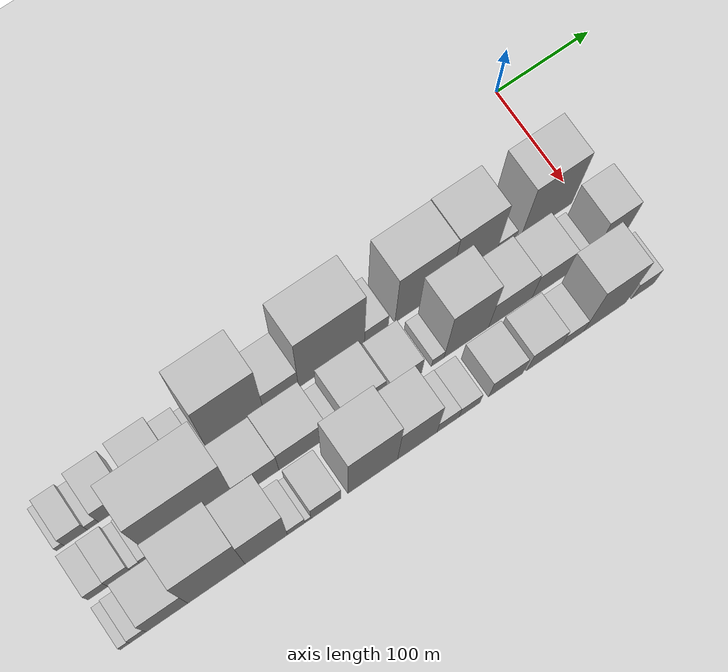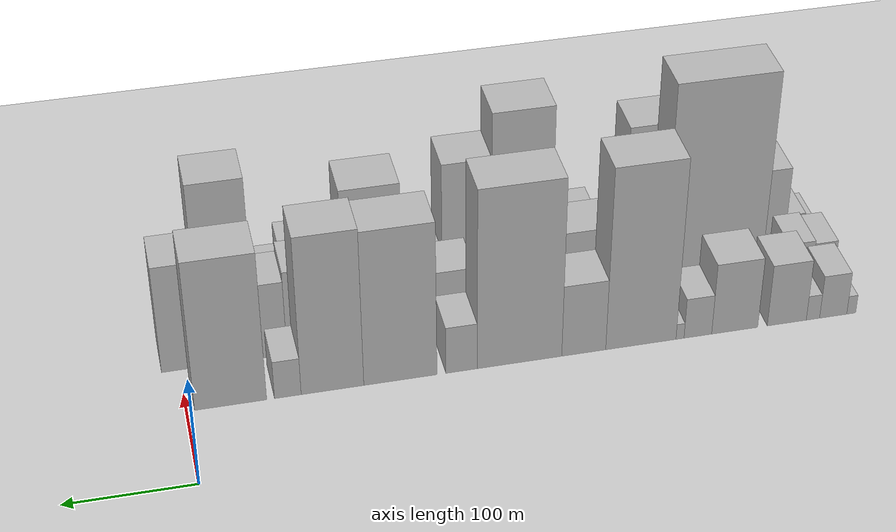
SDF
<sdf version="1.6">
 <world name="default">
  <include><name>ground_plane_1</name><uri>model://HANNAS_ground_plane</uri></include>
  <model name="building_1">
   <static>1</static>
   <pose>100.0000 -532.1938 0 0.000000 0.000000 0.000000</pose>
   <link name="link">
    <pose>0 0 9.00 0 0 0</pose>
    <collision name="collision"><geometry><box><size>40.0000 7.6124 18.0000</size></box></geometry></collision>
    <visual name="visual">
     <cast_shadows>0</cast_shadows>
     <geometry><box><size>40.0000 7.6124 18.0000</size></box></geometry>
     <material>
      <script>
       <uri>model://HANNAS_wall/materials/scripts</uri>
       <uri>model://HANNAS_wall/materials/textures</uri>
       <name>vrc/HANNAS_wall</name>
      </script>
     </material>
    </visual>
   </link>
  </model>
  <model name="building_2">
   <static>1</static>
   <pose>100.0000 -516.9038 0 0.000000 0.000000 0.000000</pose>
   <link name="link">
    <pose>0 0 21.00 0 0 0</pose>
    <collision name="collision"><geometry><box><size>40.0000 22.9676 42.0000</size></box></geometry></collision>
    <visual name="visual">
     <cast_shadows>0</cast_shadows>
     <geometry><box><size>40.0000 22.9676 42.0000</size></box></geometry>
     <material>
      <script>
       <uri>model://HANNAS_wall/materials/scripts</uri>
       <uri>model://HANNAS_wall/materials/textures</uri>
       <name>vrc/HANNAS_wall</name>
      </script>
     </material>
    </visual>
   </link>
  </model>
  <model name="building_3">
   <static>1</static>
   <pose>100.0000 -499.8165 0 0.000000 0.000000 0.000000</pose>
   <link name="link">
    <pose>0 0 12.00 0 0 0</pose>
    <collision name="collision"><geometry><box><size>40.0000 11.2069 24.0000</size></box></geometry></collision>
    <visual name="visual">
     <cast_shadows>0</cast_shadows>
     <geometry><box><size>40.0000 11.2069 24.0000</size></box></geometry>
     <material>
      <script>
       <uri>model://HANNAS_wall/materials/scripts</uri>
       <uri>model://HANNAS_wall/materials/textures</uri>
       <name>vrc/HANNAS_wall</name>
      </script>
     </material>
    </visual>
   </link>
  </model>
  <model name="building_4">
   <static>1</static>
   <pose>100.0000 -477.8729 0 0.000000 0.000000 0.000000</pose>
   <link name="link">
    <pose>0 0 30.00 0 0 0</pose>
    <collision name="collision"><geometry><box><size>40.0000 32.6803 60.0000</size></box></geometry></collision>
    <visual name="visual">
     <cast_shadows>0</cast_shadows>
     <geometry><box><size>40.0000 32.6803 60.0000</size></box></geometry>
     <material>
      <script>
       <uri>model://HANNAS_wall/materials/scripts</uri>
       <uri>model://HANNAS_wall/materials/textures</uri>
       <name>vrc/HANNAS_wall</name>
      </script>
     </material>
    </visual>
   </link>
  </model>
  <model name="building_5">
   <static>1</static>
   <pose>100.0000 -434.3912 0 0.000000 0.000000 0.000000</pose>
   <link name="link">
    <pose>0 0 34.50 0 0 0</pose>
    <collision name="collision"><geometry><box><size>40.0000 38.2831 69.0000</size></box></geometry></collision>
    <visual name="visual">
     <cast_shadows>0</cast_shadows>
     <geometry><box><size>40.0000 38.2831 69.0000</size></box></geometry>
     <material>
      <script>
       <uri>model://HANNAS_wall/materials/scripts</uri>
       <uri>model://HANNAS_wall/materials/textures</uri>
       <name>vrc/HANNAS_wall</name>
      </script>
     </material>
    </visual>
   </link>
  </model>
  <model name="building_6">
   <static>1</static>
   <pose>100.0000 -403.8500 0 0.000000 0.000000 0.000000</pose>
   <link name="link">
    <pose>0 0 19.50 0 0 0</pose>
    <collision name="collision"><geometry><box><size>40.0000 22.7993 39.0000</size></box></geometry></collision>
    <visual name="visual">
     <cast_shadows>0</cast_shadows>
     <geometry><box><size>40.0000 22.7993 39.0000</size></box></geometry>
     <material>
      <script>
       <uri>model://HANNAS_wall/materials/scripts</uri>
       <uri>model://HANNAS_wall/materials/textures</uri>
       <name>vrc/HANNAS_wall</name>
      </script>
     </material>
    </visual>
   </link>
  </model>
  <model name="building_7">
   <static>1</static>
   <pose>100.0000 -389.1463 0 0.000000 0.000000 0.000000</pose>
   <link name="link">
    <pose>0 0 7.50 0 0 0</pose>
    <collision name="collision"><geometry><box><size>40.0000 6.6081 15.0000</size></box></geometry></collision>
    <visual name="visual">
     <cast_shadows>0</cast_shadows>
     <geometry><box><size>40.0000 6.6081 15.0000</size></box></geometry>
     <material>
      <script>
       <uri>model://HANNAS_wall/materials/scripts</uri>
       <uri>model://HANNAS_wall/materials/textures</uri>
       <name>vrc/HANNAS_wall</name>
      </script>
     </material>
    </visual>
   </link>
  </model>
  <model name="building_8">
   <static>1</static>
   <pose>100.0000 -357.1126 0 0.000000 0.000000 0.000000</pose>
   <link name="link">
    <pose>0 0 87.00 0 0 0</pose>
    <collision name="collision"><geometry><box><size>40.0000 57.4594 174.0000</size></box></geometry></collision>
    <visual name="visual">
     <cast_shadows>0</cast_shadows>
     <geometry><box><size>40.0000 57.4594 174.0000</size></box></geometry>
     <material>
      <script>
       <uri>model://HANNAS_wall/materials/scripts</uri>
       <uri>model://HANNAS_wall/materials/textures</uri>
       <name>vrc/HANNAS_wall</name>
      </script>
     </material>
    </visual>
   </link>
  </model>
  <model name="building_9">
   <static>1</static>
   <pose>100.0000 -310.5954 0 0.000000 0.000000 0.000000</pose>
   <link name="link">
    <pose>0 0 34.50 0 0 0</pose>
    <collision name="collision"><geometry><box><size>40.0000 35.5749 69.0000</size></box></geometry></collision>
    <visual name="visual">
     <cast_shadows>0</cast_shadows>
     <geometry><box><size>40.0000 35.5749 69.0000</size></box></geometry>
     <material>
      <script>
       <uri>model://HANNAS_wall/materials/scripts</uri>
       <uri>model://HANNAS_wall/materials/textures</uri>
       <name>vrc/HANNAS_wall</name>
      </script>
     </material>
    </visual>
   </link>
  </model>
  <model name="building_10">
   <static>1</static>
   <pose>100.0000 -258.9079 0 0.000000 0.000000 0.000000</pose>
   <link name="link">
    <pose>0 0 85.50 0 0 0</pose>
    <collision name="collision"><geometry><box><size>40.0000 67.8001 171.0000</size></box></geometry></collision>
    <visual name="visual">
     <cast_shadows>0</cast_shadows>
     <geometry><box><size>40.0000 67.8001 171.0000</size></box></geometry>
     <material>
      <script>
       <uri>model://HANNAS_wall/materials/scripts</uri>
       <uri>model://HANNAS_wall/materials/textures</uri>
       <name>vrc/HANNAS_wall</name>
      </script>
     </material>
    </visual>
   </link>
  </model>
  <model name="building_11">
   <static>1</static>
   <pose>100.0000 -212.6583 0 0.000000 0.000000 0.000000</pose>
   <link name="link">
    <pose>0 0 22.50 0 0 0</pose>
    <collision name="collision"><geometry><box><size>40.0000 24.6991 45.0000</size></box></geometry></collision>
    <visual name="visual">
     <cast_shadows>0</cast_shadows>
     <geometry><box><size>40.0000 24.6991 45.0000</size></box></geometry>
     <material>
      <script>
       <uri>model://HANNAS_wall/materials/scripts</uri>
       <uri>model://HANNAS_wall/materials/textures</uri>
       <name>vrc/HANNAS_wall</name>
      </script>
     </material>
    </visual>
   </link>
  </model>
  <model name="building_12">
   <static>1</static>
   <pose>100.0000 -164.6180 0 0.000000 0.000000 0.000000</pose>
   <link name="link">
    <pose>0 0 73.50 0 0 0</pose>
    <collision name="collision"><geometry><box><size>40.0000 57.3815 147.0000</size></box></geometry></collision>
    <visual name="visual">
     <cast_shadows>0</cast_shadows>
     <geometry><box><size>40.0000 57.3815 147.0000</size></box></geometry>
     <material>
      <script>
       <uri>model://HANNAS_wall/materials/scripts</uri>
       <uri>model://HANNAS_wall/materials/textures</uri>
       <name>vrc/HANNAS_wall</name>
      </script>
     </material>
    </visual>
   </link>
  </model>
  <model name="building_13">
   <static>1</static>
   <pose>100.0000 -111.6563 0 0.000000 0.000000 0.000000</pose>
   <link name="link">
    <pose>0 0 75.00 0 0 0</pose>
    <collision name="collision"><geometry><box><size>40.0000 48.5418 150.0000</size></box></geometry></collision>
    <visual name="visual">
     <cast_shadows>0</cast_shadows>
     <geometry><box><size>40.0000 48.5418 150.0000</size></box></geometry>
     <material>
      <script>
       <uri>model://HANNAS_wall/materials/scripts</uri>
       <uri>model://HANNAS_wall/materials/textures</uri>
       <name>vrc/HANNAS_wall</name>
      </script>
     </material>
    </visual>
   </link>
  </model>
  <model name="building_14">
   <static>1</static>
   <pose>100.0000 -77.1205 0 0.000000 0.000000 0.000000</pose>
   <link name="link">
    <pose>0 0 18.00 0 0 0</pose>
    <collision name="collision"><geometry><box><size>40.0000 20.5298 36.0000</size></box></geometry></collision>
    <visual name="visual">
     <cast_shadows>0</cast_shadows>
     <geometry><box><size>40.0000 20.5298 36.0000</size></box></geometry>
     <material>
      <script>
       <uri>model://HANNAS_wall/materials/scripts</uri>
       <uri>model://HANNAS_wall/materials/textures</uri>
       <name>vrc/HANNAS_wall</name>
      </script>
     </material>
    </visual>
   </link>
  </model>
  <model name="building_15">
   <static>1</static>
   <pose>100.0000 -33.4016 0 0.000000 0.000000 0.000000</pose>
   <link name="link">
    <pose>0 0 70.50 0 0 0</pose>
    <collision name="collision"><geometry><box><size>40.0000 54.9079 141.0000</size></box></geometry></collision>
    <visual name="visual">
     <cast_shadows>0</cast_shadows>
     <geometry><box><size>40.0000 54.9079 141.0000</size></box></geometry>
     <material>
      <script>
       <uri>model://HANNAS_wall/materials/scripts</uri>
       <uri>model://HANNAS_wall/materials/textures</uri>
       <name>vrc/HANNAS_wall</name>
      </script>
     </material>
    </visual>
   </link>
  </model>
  <model name="building_35">
   <static>1</static>
   <pose>149.0000 -526.2612 0 0.000000 0.000000 0.000000</pose>
   <link name="link">
    <pose>0 0 18.00 0 0 0</pose>
    <collision name="collision"><geometry><box><size>40.0000 19.4777 36.0000</size></box></geometry></collision>
    <visual name="visual">
     <cast_shadows>0</cast_shadows>
     <geometry><box><size>40.0000 19.4777 36.0000</size></box></geometry>
     <material>
      <script>
       <uri>model://HANNAS_wall/materials/scripts</uri>
       <uri>model://HANNAS_wall/materials/textures</uri>
       <name>vrc/HANNAS_wall</name>
      </script>
     </material>
    </visual>
   </link>
  </model>
  <model name="building_36">
   <static>1</static>
   <pose>149.0000 -505.1789 0 0.000000 0.000000 0.000000</pose>
   <link name="link">
    <pose>0 0 19.50 0 0 0</pose>
    <collision name="collision"><geometry><box><size>40.0000 22.6869 39.0000</size></box></geometry></collision>
    <visual name="visual">
     <cast_shadows>0</cast_shadows>
     <geometry><box><size>40.0000 22.6869 39.0000</size></box></geometry>
     <material>
      <script>
       <uri>model://HANNAS_wall/materials/scripts</uri>
       <uri>model://HANNAS_wall/materials/textures</uri>
       <name>vrc/HANNAS_wall</name>
      </script>
     </material>
    </visual>
   </link>
  </model>
  <model name="building_37">
   <static>1</static>
   <pose>149.0000 -488.9507 0 0.000000 0.000000 0.000000</pose>
   <link name="link">
    <pose>0 0 10.50 0 0 0</pose>
    <collision name="collision"><geometry><box><size>40.0000 9.7695 21.0000</size></box></geometry></collision>
    <visual name="visual">
     <cast_shadows>0</cast_shadows>
     <geometry><box><size>40.0000 9.7695 21.0000</size></box></geometry>
     <material>
      <script>
       <uri>model://HANNAS_wall/materials/scripts</uri>
       <uri>model://HANNAS_wall/materials/textures</uri>
       <name>vrc/HANNAS_wall</name>
      </script>
     </material>
    </visual>
   </link>
  </model>
  <model name="building_38">
   <static>1</static>
   <pose>149.0000 -478.0736 0 0.000000 0.000000 0.000000</pose>
   <link name="link">
    <pose>0 0 13.50 0 0 0</pose>
    <collision name="collision"><geometry><box><size>40.0000 11.9847 27.0000</size></box></geometry></collision>
    <visual name="visual">
     <cast_shadows>0</cast_shadows>
     <geometry><box><size>40.0000 11.9847 27.0000</size></box></geometry>
     <material>
      <script>
       <uri>model://HANNAS_wall/materials/scripts</uri>
       <uri>model://HANNAS_wall/materials/textures</uri>
       <name>vrc/HANNAS_wall</name>
      </script>
     </material>
    </visual>
   </link>
  </model>
  <model name="building_39">
   <static>1</static>
   <pose>149.0000 -430.7944 0 0.000000 0.000000 0.000000</pose>
   <link name="link">
    <pose>0 0 103.50 0 0 0</pose>
    <collision name="collision"><geometry><box><size>40.0000 82.5737 207.0000</size></box></geometry></collision>
    <visual name="visual">
     <cast_shadows>0</cast_shadows>
     <geometry><box><size>40.0000 82.5737 207.0000</size></box></geometry>
     <material>
      <script>
       <uri>model://HANNAS_wall/materials/scripts</uri>
       <uri>model://HANNAS_wall/materials/textures</uri>
       <name>vrc/HANNAS_wall</name>
      </script>
     </material>
    </visual>
   </link>
  </model>
  <model name="building_40">
   <static>1</static>
   <pose>149.0000 -367.7683 0 0.000000 0.000000 0.000000</pose>
   <link name="link">
    <pose>0 0 37.50 0 0 0</pose>
    <collision name="collision"><geometry><box><size>40.0000 43.4785 75.0000</size></box></geometry></collision>
    <visual name="visual">
     <cast_shadows>0</cast_shadows>
     <geometry><box><size>40.0000 43.4785 75.0000</size></box></geometry>
     <material>
      <script>
       <uri>model://HANNAS_wall/materials/scripts</uri>
       <uri>model://HANNAS_wall/materials/textures</uri>
       <name>vrc/HANNAS_wall</name>
      </script>
     </material>
    </visual>
   </link>
  </model>
  <model name="building_41">
   <static>1</static>
   <pose>149.0000 -321.7843 0 0.000000 0.000000 0.000000</pose>
   <link name="link">
    <pose>0 0 40.50 0 0 0</pose>
    <collision name="collision"><geometry><box><size>40.0000 48.4895 81.0000</size></box></geometry></collision>
    <visual name="visual">
     <cast_shadows>0</cast_shadows>
     <geometry><box><size>40.0000 48.4895 81.0000</size></box></geometry>
     <material>
      <script>
       <uri>model://HANNAS_wall/materials/scripts</uri>
       <uri>model://HANNAS_wall/materials/textures</uri>
       <name>vrc/HANNAS_wall</name>
      </script>
     </material>
    </visual>
   </link>
  </model>
  <model name="building_42">
   <static>1</static>
   <pose>149.0000 -287.8774 0 0.000000 0.000000 0.000000</pose>
   <link name="link">
    <pose>0 0 13.50 0 0 0</pose>
    <collision name="collision"><geometry><box><size>40.0000 13.3243 27.0000</size></box></geometry></collision>
    <visual name="visual">
     <cast_shadows>0</cast_shadows>
     <geometry><box><size>40.0000 13.3243 27.0000</size></box></geometry>
     <material>
      <script>
       <uri>model://HANNAS_wall/materials/scripts</uri>
       <uri>model://HANNAS_wall/materials/textures</uri>
       <name>vrc/HANNAS_wall</name>
      </script>
     </material>
    </visual>
   </link>
  </model>
  <model name="building_43">
   <static>1</static>
   <pose>149.0000 -259.6528 0 0.000000 0.000000 0.000000</pose>
   <link name="link">
    <pose>0 0 40.50 0 0 0</pose>
    <collision name="collision"><geometry><box><size>40.0000 43.1248 81.0000</size></box></geometry></collision>
    <visual name="visual">
     <cast_shadows>0</cast_shadows>
     <geometry><box><size>40.0000 43.1248 81.0000</size></box></geometry>
     <material>
      <script>
       <uri>model://HANNAS_wall/materials/scripts</uri>
       <uri>model://HANNAS_wall/materials/textures</uri>
       <name>vrc/HANNAS_wall</name>
      </script>
     </material>
    </visual>
   </link>
  </model>
  <model name="building_44">
   <static>1</static>
   <pose>149.0000 -216.8836 0 0.000000 0.000000 0.000000</pose>
   <link name="link">
    <pose>0 0 30.00 0 0 0</pose>
    <collision name="collision"><geometry><box><size>40.0000 34.4137 60.0000</size></box></geometry></collision>
    <visual name="visual">
     <cast_shadows>0</cast_shadows>
     <geometry><box><size>40.0000 34.4137 60.0000</size></box></geometry>
     <material>
      <script>
       <uri>model://HANNAS_wall/materials/scripts</uri>
       <uri>model://HANNAS_wall/materials/textures</uri>
       <name>vrc/HANNAS_wall</name>
      </script>
     </material>
    </visual>
   </link>
  </model>
  <model name="building_45">
   <static>1</static>
   <pose>149.0000 -183.0732 0 0.000000 0.000000 0.000000</pose>
   <link name="link">
    <pose>0 0 13.50 0 0 0</pose>
    <collision name="collision"><geometry><box><size>40.0000 13.2069 27.0000</size></box></geometry></collision>
    <visual name="visual">
     <cast_shadows>0</cast_shadows>
     <geometry><box><size>40.0000 13.2069 27.0000</size></box></geometry>
     <material>
      <script>
       <uri>model://HANNAS_wall/materials/scripts</uri>
       <uri>model://HANNAS_wall/materials/textures</uri>
       <name>vrc/HANNAS_wall</name>
      </script>
     </material>
    </visual>
   </link>
  </model>
  <model name="building_46">
   <static>1</static>
   <pose>149.0000 -153.2145 0 0.000000 0.000000 0.000000</pose>
   <link name="link">
    <pose>0 0 75.00 0 0 0</pose>
    <collision name="collision"><geometry><box><size>40.0000 46.5105 150.0000</size></box></geometry></collision>
    <visual name="visual">
     <cast_shadows>0</cast_shadows>
     <geometry><box><size>40.0000 46.5105 150.0000</size></box></geometry>
     <material>
      <script>
       <uri>model://HANNAS_wall/materials/scripts</uri>
       <uri>model://HANNAS_wall/materials/textures</uri>
       <name>vrc/HANNAS_wall</name>
      </script>
     </material>
    </visual>
   </link>
  </model>
  <model name="building_47">
   <static>1</static>
   <pose>149.0000 -107.0001 0 0.000000 0.000000 0.000000</pose>
   <link name="link">
    <pose>0 0 40.50 0 0 0</pose>
    <collision name="collision"><geometry><box><size>40.0000 45.9184 81.0000</size></box></geometry></collision>
    <visual name="visual">
     <cast_shadows>0</cast_shadows>
     <geometry><box><size>40.0000 45.9184 81.0000</size></box></geometry>
     <material>
      <script>
       <uri>model://HANNAS_wall/materials/scripts</uri>
       <uri>model://HANNAS_wall/materials/textures</uri>
       <name>vrc/HANNAS_wall</name>
      </script>
     </material>
    </visual>
   </link>
  </model>
  <model name="building_48">
   <static>1</static>
   <pose>149.0000 -64.0672 0 0.000000 0.000000 0.000000</pose>
   <link name="link">
    <pose>0 0 36.00 0 0 0</pose>
    <collision name="collision"><geometry><box><size>40.0000 39.9473 72.0000</size></box></geometry></collision>
    <visual name="visual">
     <cast_shadows>0</cast_shadows>
     <geometry><box><size>40.0000 39.9473 72.0000</size></box></geometry>
     <material>
      <script>
       <uri>model://HANNAS_wall/materials/scripts</uri>
       <uri>model://HANNAS_wall/materials/textures</uri>
       <name>vrc/HANNAS_wall</name>
      </script>
     </material>
    </visual>
   </link>
  </model>
  <model name="building_49">
   <static>1</static>
   <pose>149.0000 -32.3718 0 0.000000 0.000000 0.000000</pose>
   <link name="link">
    <pose>0 0 16.50 0 0 0</pose>
    <collision name="collision"><geometry><box><size>40.0000 17.4436 33.0000</size></box></geometry></collision>
    <visual name="visual">
     <cast_shadows>0</cast_shadows>
     <geometry><box><size>40.0000 17.4436 33.0000</size></box></geometry>
     <material>
      <script>
       <uri>model://HANNAS_wall/materials/scripts</uri>
       <uri>model://HANNAS_wall/materials/textures</uri>
       <name>vrc/HANNAS_wall</name>
      </script>
     </material>
    </visual>
   </link>
  </model>
  <model name="building_50">
   <static>1</static>
   <pose>149.0000 -2.3414 0 0.000000 0.000000 0.000000</pose>
   <link name="link">
    <pose>0 0 51.00 0 0 0</pose>
    <collision name="collision"><geometry><box><size>40.0000 32.6172 102.0000</size></box></geometry></collision>
    <visual name="visual">
     <cast_shadows>0</cast_shadows>
     <geometry><box><size>40.0000 32.6172 102.0000</size></box></geometry>
     <material>
      <script>
       <uri>model://HANNAS_wall/materials/scripts</uri>
       <uri>model://HANNAS_wall/materials/textures</uri>
       <name>vrc/HANNAS_wall</name>
      </script>
     </material>
    </visual>
   </link>
  </model>
  <model name="building_66">
   <static>1</static>
   <pose>198.0000 -531.2772 0 0.000000 0.000000 0.000000</pose>
   <link name="link">
    <pose>0 0 10.50 0 0 0</pose>
    <collision name="collision"><geometry><box><size>40.0000 9.4457 21.0000</size></box></geometry></collision>
    <visual name="visual">
     <cast_shadows>0</cast_shadows>
     <geometry><box><size>40.0000 9.4457 21.0000</size></box></geometry>
     <material>
      <script>
       <uri>model://HANNAS_wall/materials/scripts</uri>
       <uri>model://HANNAS_wall/materials/textures</uri>
       <name>vrc/HANNAS_wall</name>
      </script>
     </material>
    </visual>
   </link>
  </model>
  <model name="building_67">
   <static>1</static>
   <pose>198.0000 -518.4833 0 0.000000 0.000000 0.000000</pose>
   <link name="link">
    <pose>0 0 15.00 0 0 0</pose>
    <collision name="collision"><geometry><box><size>40.0000 16.1420 30.0000</size></box></geometry></collision>
    <visual name="visual">
     <cast_shadows>0</cast_shadows>
     <geometry><box><size>40.0000 16.1420 30.0000</size></box></geometry>
     <material>
      <script>
       <uri>model://HANNAS_wall/materials/scripts</uri>
       <uri>model://HANNAS_wall/materials/textures</uri>
       <name>vrc/HANNAS_wall</name>
      </script>
     </material>
    </visual>
   </link>
  </model>
  <model name="building_68">
   <static>1</static>
   <pose>198.0000 -490.0106 0 0.000000 0.000000 0.000000</pose>
   <link name="link">
    <pose>0 0 39.00 0 0 0</pose>
    <collision name="collision"><geometry><box><size>40.0000 40.8033 78.0000</size></box></geometry></collision>
    <visual name="visual">
     <cast_shadows>0</cast_shadows>
     <geometry><box><size>40.0000 40.8033 78.0000</size></box></geometry>
     <material>
      <script>
       <uri>model://HANNAS_wall/materials/scripts</uri>
       <uri>model://HANNAS_wall/materials/textures</uri>
       <name>vrc/HANNAS_wall</name>
      </script>
     </material>
    </visual>
   </link>
  </model>
  <model name="building_69">
   <static>1</static>
   <pose>198.0000 -441.2803 0 0.000000 0.000000 0.000000</pose>
   <link name="link">
    <pose>0 0 84.00 0 0 0</pose>
    <collision name="collision"><geometry><box><size>40.0000 56.6573 168.0000</size></box></geometry></collision>
    <visual name="visual">
     <cast_shadows>0</cast_shadows>
     <geometry><box><size>40.0000 56.6573 168.0000</size></box></geometry>
     <material>
      <script>
       <uri>model://HANNAS_wall/materials/scripts</uri>
       <uri>model://HANNAS_wall/materials/textures</uri>
       <name>vrc/HANNAS_wall</name>
      </script>
     </material>
    </visual>
   </link>
  </model>
  <model name="building_70">
   <static>1</static>
   <pose>198.0000 -391.7506 0 0.000000 0.000000 0.000000</pose>
   <link name="link">
    <pose>0 0 69.00 0 0 0</pose>
    <collision name="collision"><geometry><box><size>40.0000 42.4021 138.0000</size></box></geometry></collision>
    <visual name="visual">
     <cast_shadows>0</cast_shadows>
     <geometry><box><size>40.0000 42.4021 138.0000</size></box></geometry>
     <material>
      <script>
       <uri>model://HANNAS_wall/materials/scripts</uri>
       <uri>model://HANNAS_wall/materials/textures</uri>
       <name>vrc/HANNAS_wall</name>
      </script>
     </material>
    </visual>
   </link>
  </model>
  <model name="building_71">
   <static>1</static>
   <pose>198.0000 -361.7275 0 0.000000 0.000000 0.000000</pose>
   <link name="link">
    <pose>0 0 15.00 0 0 0</pose>
    <collision name="collision"><geometry><box><size>40.0000 17.6441 30.0000</size></box></geometry></collision>
    <visual name="visual">
     <cast_shadows>0</cast_shadows>
     <geometry><box><size>40.0000 17.6441 30.0000</size></box></geometry>
     <material>
      <script>
       <uri>model://HANNAS_wall/materials/scripts</uri>
       <uri>model://HANNAS_wall/materials/textures</uri>
       <name>vrc/HANNAS_wall</name>
      </script>
     </material>
    </visual>
   </link>
  </model>
  <model name="building_72">
   <static>1</static>
   <pose>198.0000 -349.8560 0 0.000000 0.000000 0.000000</pose>
   <link name="link">
    <pose>0 0 7.50 0 0 0</pose>
    <collision name="collision"><geometry><box><size>40.0000 6.0989 15.0000</size></box></geometry></collision>
    <visual name="visual">
     <cast_shadows>0</cast_shadows>
     <geometry><box><size>40.0000 6.0989 15.0000</size></box></geometry>
     <material>
      <script>
       <uri>model://HANNAS_wall/materials/scripts</uri>
       <uri>model://HANNAS_wall/materials/textures</uri>
       <name>vrc/HANNAS_wall</name>
      </script>
     </material>
    </visual>
   </link>
  </model>
  <model name="building_73">
   <static>1</static>
   <pose>198.0000 -331.6696 0 0.000000 0.000000 0.000000</pose>
   <link name="link">
    <pose>0 0 28.50 0 0 0</pose>
    <collision name="collision"><geometry><box><size>40.0000 30.2740 57.0000</size></box></geometry></collision>
    <visual name="visual">
     <cast_shadows>0</cast_shadows>
     <geometry><box><size>40.0000 30.2740 57.0000</size></box></geometry>
     <material>
      <script>
       <uri>model://HANNAS_wall/materials/scripts</uri>
       <uri>model://HANNAS_wall/materials/textures</uri>
       <name>vrc/HANNAS_wall</name>
      </script>
     </material>
    </visual>
   </link>
  </model>
  <model name="building_74">
   <static>1</static>
   <pose>198.0000 -284.2491 0 0.000000 0.000000 0.000000</pose>
   <link name="link">
    <pose>0 0 84.00 0 0 0</pose>
    <collision name="collision"><geometry><box><size>40.0000 50.5671 168.0000</size></box></geometry></collision>
    <visual name="visual">
     <cast_shadows>0</cast_shadows>
     <geometry><box><size>40.0000 50.5671 168.0000</size></box></geometry>
     <material>
      <script>
       <uri>model://HANNAS_wall/materials/scripts</uri>
       <uri>model://HANNAS_wall/materials/textures</uri>
       <name>vrc/HANNAS_wall</name>
      </script>
     </material>
    </visual>
   </link>
  </model>
  <model name="building_75">
   <static>1</static>
   <pose>198.0000 -238.7425 0 0.000000 0.000000 0.000000</pose>
   <link name="link">
    <pose>0 0 63.00 0 0 0</pose>
    <collision name="collision"><geometry><box><size>40.0000 40.4462 126.0000</size></box></geometry></collision>
    <visual name="visual">
     <cast_shadows>0</cast_shadows>
     <geometry><box><size>40.0000 40.4462 126.0000</size></box></geometry>
     <material>
      <script>
       <uri>model://HANNAS_wall/materials/scripts</uri>
       <uri>model://HANNAS_wall/materials/textures</uri>
       <name>vrc/HANNAS_wall</name>
      </script>
     </material>
    </visual>
   </link>
  </model>
  <model name="building_76">
   <static>1</static>
   <pose>198.0000 -207.1065 0 0.000000 0.000000 0.000000</pose>
   <link name="link">
    <pose>0 0 21.00 0 0 0</pose>
    <collision name="collision"><geometry><box><size>40.0000 22.8258 42.0000</size></box></geometry></collision>
    <visual name="visual">
     <cast_shadows>0</cast_shadows>
     <geometry><box><size>40.0000 22.8258 42.0000</size></box></geometry>
     <material>
      <script>
       <uri>model://HANNAS_wall/materials/scripts</uri>
       <uri>model://HANNAS_wall/materials/textures</uri>
       <name>vrc/HANNAS_wall</name>
      </script>
     </material>
    </visual>
   </link>
  </model>
  <model name="building_77">
   <static>1</static>
   <pose>198.0000 -184.7379 0 0.000000 0.000000 0.000000</pose>
   <link name="link">
    <pose>0 0 19.50 0 0 0</pose>
    <collision name="collision"><geometry><box><size>40.0000 21.9114 39.0000</size></box></geometry></collision>
    <visual name="visual">
     <cast_shadows>0</cast_shadows>
     <geometry><box><size>40.0000 21.9114 39.0000</size></box></geometry>
     <material>
      <script>
       <uri>model://HANNAS_wall/materials/scripts</uri>
       <uri>model://HANNAS_wall/materials/textures</uri>
       <name>vrc/HANNAS_wall</name>
      </script>
     </material>
    </visual>
   </link>
  </model>
  <model name="building_78">
   <static>1</static>
   <pose>198.0000 -146.9664 0 0.000000 0.000000 0.000000</pose>
   <link name="link">
    <pose>0 0 30.00 0 0 0</pose>
    <collision name="collision"><geometry><box><size>40.0000 35.6318 60.0000</size></box></geometry></collision>
    <visual name="visual">
     <cast_shadows>0</cast_shadows>
     <geometry><box><size>40.0000 35.6318 60.0000</size></box></geometry>
     <material>
      <script>
       <uri>model://HANNAS_wall/materials/scripts</uri>
       <uri>model://HANNAS_wall/materials/textures</uri>
       <name>vrc/HANNAS_wall</name>
      </script>
     </material>
    </visual>
   </link>
  </model>
  <model name="building_79">
   <static>1</static>
   <pose>198.0000 -106.9210 0 0.000000 0.000000 0.000000</pose>
   <link name="link">
    <pose>0 0 31.50 0 0 0</pose>
    <collision name="collision"><geometry><box><size>40.0000 36.4590 63.0000</size></box></geometry></collision>
    <visual name="visual">
     <cast_shadows>0</cast_shadows>
     <geometry><box><size>40.0000 36.4590 63.0000</size></box></geometry>
     <material>
      <script>
       <uri>model://HANNAS_wall/materials/scripts</uri>
       <uri>model://HANNAS_wall/materials/textures</uri>
       <name>vrc/HANNAS_wall</name>
      </script>
     </material>
    </visual>
   </link>
  </model>
  <model name="building_80">
   <static>1</static>
   <pose>198.0000 -76.8439 0 0.000000 0.000000 0.000000</pose>
   <link name="link">
    <pose>0 0 21.00 0 0 0</pose>
    <collision name="collision"><geometry><box><size>40.0000 23.6952 42.0000</size></box></geometry></collision>
    <visual name="visual">
     <cast_shadows>0</cast_shadows>
     <geometry><box><size>40.0000 23.6952 42.0000</size></box></geometry>
     <material>
      <script>
       <uri>model://HANNAS_wall/materials/scripts</uri>
       <uri>model://HANNAS_wall/materials/textures</uri>
       <name>vrc/HANNAS_wall</name>
      </script>
     </material>
    </visual>
   </link>
  </model>
  <model name="building_81">
   <static>1</static>
   <pose>198.0000 -42.5561 0 0.000000 0.000000 0.000000</pose>
   <link name="link">
    <pose>0 0 69.00 0 0 0</pose>
    <collision name="collision"><geometry><box><size>40.0000 44.8804 138.0000</size></box></geometry></collision>
    <visual name="visual">
     <cast_shadows>0</cast_shadows>
     <geometry><box><size>40.0000 44.8804 138.0000</size></box></geometry>
     <material>
      <script>
       <uri>model://HANNAS_wall/materials/scripts</uri>
       <uri>model://HANNAS_wall/materials/textures</uri>
       <name>vrc/HANNAS_wall</name>
      </script>
     </material>
    </visual>
   </link>
  </model>
  <model name="building_82">
   <static>1</static>
   <pose>198.0000 -2.0942 0 0.000000 0.000000 0.000000</pose>
   <link name="link">
    <pose>0 0 24.00 0 0 0</pose>
    <collision name="collision"><geometry><box><size>40.0000 24.0435 48.0000</size></box></geometry></collision>
    <visual name="visual">
     <cast_shadows>0</cast_shadows>
     <geometry><box><size>40.0000 24.0435 48.0000</size></box></geometry>
     <material>
      <script>
       <uri>model://HANNAS_wall/materials/scripts</uri>
       <uri>model://HANNAS_wall/materials/textures</uri>
       <name>vrc/HANNAS_wall</name>
      </script>
     </material>
    </visual>
   </link>
  </model>
 </world>
</sdf>
